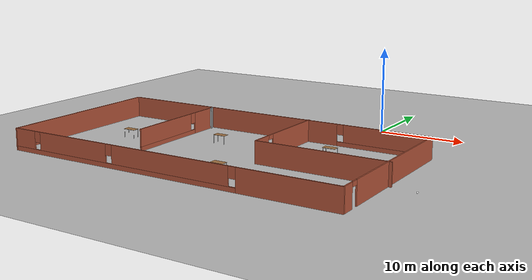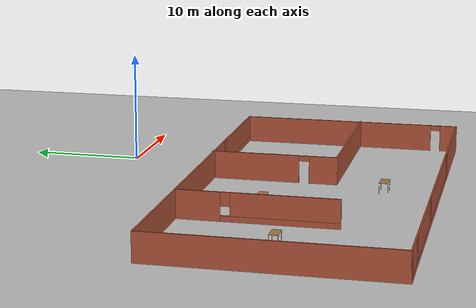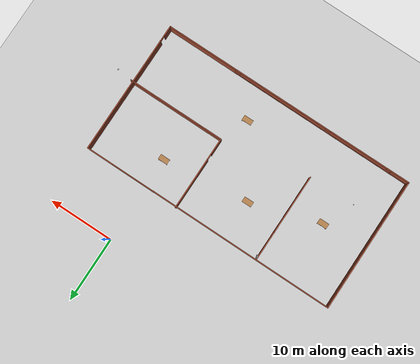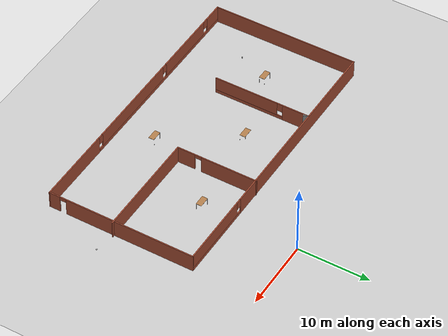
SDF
<sdf version="1.6">
 <world name="default">
  <light name="sun" type="directional">
   <pose>0 0 10 0 -0 0</pose>
   <diffuse>0.8 0.8 0.8 1</diffuse>
   <specular>0.1 0.1 0.1 1</specular>
   <attenuation>
    <range>1000</range>
    <constant>0.9</constant>
    <linear>0.01</linear>
    <quadratic>0.001</quadratic>
   </attenuation>
   <direction>-0.5 0.5 -1</direction>
  </light>
  <model name="ground_plane">
   <static>1</static>
   <link name="link">
    <collision name="collision">
     <geometry><plane><normal>0 0 1</normal><size>100 100</size></plane></geometry>
     <surface><friction><ode><mu>100</mu><mu2>50</mu2></ode></friction></surface>
    </collision>
    <visual name="visual">
     <cast_shadows>0</cast_shadows>
     <geometry><plane><normal>0 0 1</normal><size>100 100</size></plane></geometry>
     <material>
      <script><uri>file://media/materials/scripts/gazebo.material</uri><name>Gazebo/Grey</name></script>
     </material>
    </visual>
   </link>
  </model>
  <gravity>0 0 -9.8</gravity>
  <magnetic_field>6e-06 2.3e-05 -4.2e-05</magnetic_field>
  <atmosphere type="adiabatic"/>
  <physics name="default_physics" default="0" type="ode">
   <max_step_size>0.001</max_step_size>
   <real_time_factor>1</real_time_factor>
   <real_time_update_rate>1000</real_time_update_rate>
  </physics>
  <scene><ambient>0.4 0.4 0.4 1</ambient><background>0.7 0.7 0.7 1</background><shadows>1</shadows></scene>
  <spherical_coordinates>
   <surface_model>EARTH_WGS84</surface_model>
   <latitude_deg>0</latitude_deg>
   <longitude_deg>0</longitude_deg>
   <elevation>0</elevation>
   <heading_deg>0</heading_deg>
  </spherical_coordinates>
  <model name="building01">
   <pose>-10.1865 -19.2112 0 0 -0 0</pose>
   <link name="Wall_14">
    <pose>-0.161871 10.2462 0 0 -0 0</pose>
    <visual name="Wall_14_Visual_0">
     <pose>-5.58099 0 1.25 0 -0 0</pose>
     <geometry><box><size>28.838 0.15 2.5</size></box></geometry>
     <material>
      <script><uri>file://media/materials/scripts/gazebo.material</uri><name>Gazebo/Bricks</name></script>
      <ambient>1 1 1 1</ambient>
     </material>
     <meta><layer>0</layer></meta>
    </visual>
    <collision name="Wall_14_Collision_0">
     <geometry><box><size>28.838 0.15 2.5</size></box></geometry>
     <pose>-5.58099 0 1.25 0 -0 0</pose>
    </collision>
    <visual name="Wall_14_Visual_1">
     <pose>14.419 0 0.25 0 -0 0</pose>
     <geometry><box><size>11.162 0.15 0.5</size></box></geometry>
     <material>
      <script><uri>file://media/materials/scripts/gazebo.material</uri><name>Gazebo/Bricks</name></script>
      <ambient>1 1 1 1</ambient>
     </material>
     <meta><layer>0</layer></meta>
    </visual>
    <collision name="Wall_14_Collision_1">
     <geometry><box><size>11.162 0.15 0.5</size></box></geometry>
     <pose>14.419 0 0.25 0 -0 0</pose>
    </collision>
    <visual name="Wall_14_Visual_2">
     <pose>14.819 0 1.5 0 -0 0</pose>
     <geometry><box><size>10.362 0.15 2</size></box></geometry>
     <material>
      <script><uri>file://media/materials/scripts/gazebo.material</uri><name>Gazebo/Bricks</name></script>
      <ambient>1 1 1 1</ambient>
     </material>
     <meta><layer>0</layer></meta>
    </visual>
    <collision name="Wall_14_Collision_2">
     <geometry><box><size>10.362 0.15 2</size></box></geometry>
     <pose>14.819 0 1.5 0 -0 0</pose>
    </collision>
    <visual name="Wall_14_Visual_3">
     <pose>9.23803 0 1.9 0 -0 0</pose>
     <geometry><box><size>0.8 0.15 1.2</size></box></geometry>
     <material>
      <script><uri>file://media/materials/scripts/gazebo.material</uri><name>Gazebo/Bricks</name></script>
      <ambient>1 1 1 1</ambient>
     </material>
     <meta><layer>0</layer></meta>
    </visual>
    <collision name="Wall_14_Collision_3">
     <geometry><box><size>0.8 0.15 1.2</size></box></geometry>
     <pose>9.23803 0 1.9 0 -0 0</pose>
    </collision>
   </link>
   <link name="Wall_15">
    <pose>19.7631 -0.053806 0 0 0 -1.5708</pose>
    <visual name="Wall_15_Visual_0">
     <pose>-1.25401 0 1.25 0 -0 0</pose>
     <geometry><box><size>18.242 0.15 2.5</size></box></geometry>
     <material>
      <script><uri>file://media/materials/scripts/gazebo.material</uri><name>Gazebo/Bricks</name></script>
      <ambient>1 1 1 1</ambient>
     </material>
     <meta><layer>0</layer></meta>
    </visual>
    <collision name="Wall_15_Collision_0">
     <geometry><box><size>18.242 0.15 2.5</size></box></geometry>
     <pose>-1.25401 0 1.25 0 -0 0</pose>
    </collision>
    <visual name="Wall_15_Visual_1">
     <pose>9.57099 0 1.25 0 -0 0</pose>
     <geometry><box><size>1.60801 0.15 2.5</size></box></geometry>
     <material>
      <script><uri>file://media/materials/scripts/gazebo.material</uri><name>Gazebo/Bricks</name></script>
      <ambient>1 1 1 1</ambient>
     </material>
     <meta><layer>0</layer></meta>
    </visual>
    <collision name="Wall_15_Collision_1">
     <geometry><box><size>1.60801 0.15 2.5</size></box></geometry>
     <pose>9.57099 0 1.25 0 -0 0</pose>
    </collision>
    <visual name="Wall_15_Visual_2">
     <pose>8.31699 0 2.25 0 -0 0</pose>
     <geometry><box><size>0.9 0.15 0.5</size></box></geometry>
     <material>
      <script><uri>file://media/materials/scripts/gazebo.material</uri><name>Gazebo/Bricks</name></script>
      <ambient>1 1 1 1</ambient>
     </material>
     <meta><layer>0</layer></meta>
    </visual>
    <collision name="Wall_15_Collision_2">
     <geometry><box><size>0.9 0.15 0.5</size></box></geometry>
     <pose>8.31699 0 2.25 0 -0 0</pose>
    </collision>
   </link>
   <link name="Wall_16">
    <pose>-0.161871 -10.3538 0 0 -0 3.14159</pose>
    <visual name="Wall_16_Visual_0">
     <pose>-14.4424 0 1.25 0 -0 0</pose>
     <geometry><box><size>11.1153 0.15 2.5</size></box></geometry>
     <material>
      <script><uri>file://media/materials/scripts/gazebo.material</uri><name>Gazebo/Bricks</name></script>
      <ambient>1 1 1 1</ambient>
     </material>
     <meta><layer>0</layer></meta>
    </visual>
    <collision name="Wall_16_Collision_0">
     <geometry><box><size>11.1153 0.15 2.5</size></box></geometry>
     <pose>-14.4424 0 1.25 0 -0 0</pose>
    </collision>
    <visual name="Wall_16_Visual_1">
     <pose>5.55763 0 0.25 0 -0 0</pose>
     <geometry><box><size>28.8847 0.15 0.5</size></box></geometry>
     <material>
      <script><uri>file://media/materials/scripts/gazebo.material</uri><name>Gazebo/Bricks</name></script>
      <ambient>1 1 1 1</ambient>
     </material>
     <meta><layer>0</layer></meta>
    </visual>
    <collision name="Wall_16_Collision_1">
     <geometry><box><size>28.8847 0.15 0.5</size></box></geometry>
     <pose>5.55763 0 0.25 0 -0 0</pose>
    </collision>
    <visual name="Wall_16_Visual_2">
     <pose>-0.951851 0 1.5 0 -0 0</pose>
     <geometry><box><size>14.2658 0.15 2</size></box></geometry>
     <material>
      <script><uri>file://media/materials/scripts/gazebo.material</uri><name>Gazebo/Bricks</name></script>
      <ambient>1 1 1 1</ambient>
     </material>
     <meta><layer>0</layer></meta>
    </visual>
    <collision name="Wall_16_Collision_2">
     <geometry><box><size>14.2658 0.15 2</size></box></geometry>
     <pose>-0.951851 0 1.5 0 -0 0</pose>
    </collision>
    <visual name="Wall_16_Visual_3">
     <pose>11.6388 0 1.5 0 -0 0</pose>
     <geometry><box><size>9.31559 0.15 2</size></box></geometry>
     <material>
      <script><uri>file://media/materials/scripts/gazebo.material</uri><name>Gazebo/Bricks</name></script>
      <ambient>1 1 1 1</ambient>
     </material>
     <meta><layer>0</layer></meta>
    </visual>
    <collision name="Wall_16_Collision_3">
     <geometry><box><size>9.31559 0.15 2</size></box></geometry>
     <pose>11.6388 0 1.5 0 -0 0</pose>
    </collision>
    <visual name="Wall_16_Visual_4">
     <pose>18.5483 0 1.5 0 -0 0</pose>
     <geometry><box><size>2.90338 0.15 2</size></box></geometry>
     <material>
      <script><uri>file://media/materials/scripts/gazebo.material</uri><name>Gazebo/Bricks</name></script>
      <ambient>1 1 1 1</ambient>
     </material>
     <meta><layer>0</layer></meta>
    </visual>
    <collision name="Wall_16_Collision_4">
     <geometry><box><size>2.90338 0.15 2</size></box></geometry>
     <pose>18.5483 0 1.5 0 -0 0</pose>
    </collision>
    <visual name="Wall_16_Visual_5">
     <pose>-8.48474 0 1.9 0 -0 0</pose>
     <geometry><box><size>0.8 0.15 1.2</size></box></geometry>
     <material>
      <script><uri>file://media/materials/scripts/gazebo.material</uri><name>Gazebo/Bricks</name></script>
      <ambient>1 1 1 1</ambient>
     </material>
     <meta><layer>0</layer></meta>
    </visual>
    <collision name="Wall_16_Collision_5">
     <geometry><box><size>0.8 0.15 1.2</size></box></geometry>
     <pose>-8.48474 0 1.9 0 -0 0</pose>
    </collision>
    <visual name="Wall_16_Visual_6">
     <pose>6.58103 0 1.9 0 -0 0</pose>
     <geometry><box><size>0.8 0.15 1.2</size></box></geometry>
     <material>
      <script><uri>file://media/materials/scripts/gazebo.material</uri><name>Gazebo/Bricks</name></script>
      <ambient>1 1 1 1</ambient>
     </material>
     <meta><layer>0</layer></meta>
    </visual>
    <collision name="Wall_16_Collision_6">
     <geometry><box><size>0.8 0.15 1.2</size></box></geometry>
     <pose>6.58103 0 1.9 0 -0 0</pose>
    </collision>
    <visual name="Wall_16_Visual_7">
     <pose>16.6966 0 1.9 0 -0 0</pose>
     <geometry><box><size>0.8 0.15 1.2</size></box></geometry>
     <material>
      <script><uri>file://media/materials/scripts/gazebo.material</uri><name>Gazebo/Bricks</name></script>
      <ambient>1 1 1 1</ambient>
     </material>
     <meta><layer>0</layer></meta>
    </visual>
    <collision name="Wall_16_Collision_7">
     <geometry><box><size>0.8 0.15 1.2</size></box></geometry>
     <pose>16.6966 0 1.9 0 -0 0</pose>
    </collision>
   </link>
   <link name="Wall_17">
    <collision name="Wall_17_Collision">
     <geometry><box><size>20.75 0.15 2.5</size></box></geometry>
     <pose>0 0 1.25 0 -0 0</pose>
    </collision>
    <visual name="Wall_17_Visual">
     <pose>0 0 1.25 0 -0 0</pose>
     <geometry><box><size>20.75 0.15 2.5</size></box></geometry>
     <material>
      <script><uri>file://media/materials/scripts/gazebo.material</uri><name>Gazebo/Bricks</name></script>
      <ambient>1 1 1 1</ambient>
     </material>
     <meta><layer>0</layer></meta>
    </visual>
    <pose>-20.0869 -0.053806 0 0 -0 1.5708</pose>
   </link>
   <link name="Wall_19">
    <collision name="Wall_19_Collision">
     <geometry><box><size>0.75 0.15 2.5</size></box></geometry>
     <pose>0 0 1.25 0 -0 0</pose>
    </collision>
    <visual name="Wall_19_Visual">
     <pose>0 0 1.25 0 -0 0</pose>
     <geometry><box><size>0.75 0.15 2.5</size></box></geometry>
     <material>
      <script><uri>file://media/materials/scripts/gazebo.material</uri><name>Gazebo/Grey</name></script>
      <ambient>1 1 1 1</ambient>
     </material>
     <meta><layer>0</layer></meta>
    </visual>
    <pose>-8.21951 9.8903 0 0 -0 1.8326</pose>
   </link>
   <link name="Wall_20">
    <pose>-8.29716 3.38007 0 0 0 -1.5708</pose>
    <visual name="Wall_20_Visual_0">
     <pose>-4.97211 0 1.25 0 -0 0</pose>
     <geometry><box><size>3.80577 0.15 2.5</size></box></geometry>
     <material>
      <script><uri>file://media/materials/scripts/gazebo.material</uri><name>Gazebo/Bricks</name></script>
      <ambient>1 1 1 1</ambient>
     </material>
     <meta><layer>0</layer></meta>
    </visual>
    <collision name="Wall_20_Collision_0">
     <geometry><box><size>3.80577 0.15 2.5</size></box></geometry>
     <pose>-4.97211 0 1.25 0 -0 0</pose>
    </collision>
    <visual name="Wall_20_Visual_1">
     <pose>1.90289 0 0.25 0 -0 0</pose>
     <geometry><box><size>9.94423 0.15 0.5</size></box></geometry>
     <material>
      <script><uri>file://media/materials/scripts/gazebo.material</uri><name>Gazebo/Bricks</name></script>
      <ambient>1 1 1 1</ambient>
     </material>
     <meta><layer>0</layer></meta>
    </visual>
    <collision name="Wall_20_Collision_1">
     <geometry><box><size>9.94423 0.15 0.5</size></box></geometry>
     <pose>1.90289 0 0.25 0 -0 0</pose>
    </collision>
    <visual name="Wall_20_Visual_2">
     <pose>2.30289 0 1.5 0 -0 0</pose>
     <geometry><box><size>9.14423 0.15 2</size></box></geometry>
     <material>
      <script><uri>file://media/materials/scripts/gazebo.material</uri><name>Gazebo/Bricks</name></script>
      <ambient>1 1 1 1</ambient>
     </material>
     <meta><layer>0</layer></meta>
    </visual>
    <collision name="Wall_20_Collision_2">
     <geometry><box><size>9.14423 0.15 2</size></box></geometry>
     <pose>2.30289 0 1.5 0 -0 0</pose>
    </collision>
    <visual name="Wall_20_Visual_3">
     <pose>-2.66923 0 1.9 0 -0 0</pose>
     <geometry><box><size>0.8 0.15 1.2</size></box></geometry>
     <material>
      <script><uri>file://media/materials/scripts/gazebo.material</uri><name>Gazebo/Bricks</name></script>
      <ambient>1 1 1 1</ambient>
     </material>
     <meta><layer>0</layer></meta>
    </visual>
    <collision name="Wall_20_Collision_3">
     <geometry><box><size>0.8 0.15 1.2</size></box></geometry>
     <pose>-2.66923 0 1.9 0 -0 0</pose>
    </collision>
   </link>
   <link name="Wall_22">
    <pose>4.98687 4.67881 0 0 0 -1.5708</pose>
    <visual name="Wall_22_Visual_0">
     <pose>-1.74061 0 1.25 0 -0 0</pose>
     <geometry><box><size>8.01879 0.15 2.5</size></box></geometry>
     <material>
      <script><uri>file://media/materials/scripts/gazebo.material</uri><name>Gazebo/Bricks</name></script>
      <ambient>1 1 1 1</ambient>
     </material>
     <meta><layer>0</layer></meta>
    </visual>
    <collision name="Wall_22_Collision_0">
     <geometry><box><size>8.01879 0.15 2.5</size></box></geometry>
     <pose>-1.74061 0 1.25 0 -0 0</pose>
    </collision>
    <visual name="Wall_22_Visual_1">
     <pose>4.45939 0 1.25 0 -0 0</pose>
     <geometry><box><size>2.58121 0.15 2.5</size></box></geometry>
     <material>
      <script><uri>file://media/materials/scripts/gazebo.material</uri><name>Gazebo/Bricks</name></script>
      <ambient>1 1 1 1</ambient>
     </material>
     <meta><layer>0</layer></meta>
    </visual>
    <collision name="Wall_22_Collision_1">
     <geometry><box><size>2.58121 0.15 2.5</size></box></geometry>
     <pose>4.45939 0 1.25 0 -0 0</pose>
    </collision>
    <visual name="Wall_22_Visual_2">
     <pose>2.71879 0 2.25 0 -0 0</pose>
     <geometry><box><size>0.9 0.15 0.5</size></box></geometry>
     <material>
      <script><uri>file://media/materials/scripts/gazebo.material</uri><name>Gazebo/Bricks</name></script>
      <ambient>1 1 1 1</ambient>
     </material>
     <meta><layer>0</layer></meta>
    </visual>
    <collision name="Wall_22_Collision_2">
     <geometry><box><size>0.9 0.15 0.5</size></box></geometry>
     <pose>2.71879 0 2.25 0 -0 0</pose>
    </collision>
   </link>
   <link name="Wall_23">
    <collision name="Wall_23_Collision">
     <geometry><box><size>15.25 0.15 2.5</size></box></geometry>
     <pose>0 0 1.25 0 -0 0</pose>
    </collision>
    <visual name="Wall_23_Visual">
     <pose>0 0 1.25 0 -0 0</pose>
     <geometry><box><size>15.25 0.15 2.5</size></box></geometry>
     <material>
      <script><uri>file://media/materials/scripts/gazebo.material</uri><name>Gazebo/Bricks</name></script>
      <ambient>0.921569 0.807843 0.615686 1</ambient>
     </material>
     <meta><layer>0</layer></meta>
    </visual>
    <pose>12.5369 -0.996193 0 0 -0 0</pose>
   </link>
   <static>1</static>
  </model>
  <model name="table">
   <static>1</static>
   <link name="link">
    <collision name="surface">
     <pose>0 0 1 0 -0 0</pose>
     <geometry><box><size>1.5 0.8 0.03</size></box></geometry>
     <surface><friction><ode><mu>0.6</mu><mu2>0.6</mu2></ode></friction></surface>
    </collision>
    <visual name="visual1">
     <pose>0 0 1 0 -0 0</pose>
     <geometry><box><size>1.5 0.8 0.03</size></box></geometry>
     <material>
      <script><uri>file://media/materials/scripts/gazebo.material</uri><name>Gazebo/Wood</name></script>
     </material>
    </visual>
    <collision name="front_left_leg">
     <pose>0.68 0.38 0.5 0 -0 0</pose>
     <geometry><cylinder><radius>0.02</radius><length>1</length></cylinder></geometry>
    </collision>
    <visual name="front_left_leg">
     <pose>0.68 0.38 0.5 0 -0 0</pose>
     <geometry><cylinder><radius>0.02</radius><length>1</length></cylinder></geometry>
     <material>
      <script><uri>file://media/materials/scripts/gazebo.material</uri><name>Gazebo/Grey</name></script>
     </material>
    </visual>
    <collision name="front_right_leg">
     <pose>0.68 -0.38 0.5 0 -0 0</pose>
     <geometry><cylinder><radius>0.02</radius><length>1</length></cylinder></geometry>
    </collision>
    <visual name="front_right_leg">
     <pose>0.68 -0.38 0.5 0 -0 0</pose>
     <geometry><cylinder><radius>0.02</radius><length>1</length></cylinder></geometry>
     <material>
      <script><uri>file://media/materials/scripts/gazebo.material</uri><name>Gazebo/Grey</name></script>
     </material>
    </visual>
    <collision name="back_right_leg">
     <pose>-0.68 -0.38 0.5 0 -0 0</pose>
     <geometry><cylinder><radius>0.02</radius><length>1</length></cylinder></geometry>
    </collision>
    <visual name="back_right_leg">
     <pose>-0.68 -0.38 0.5 0 -0 0</pose>
     <geometry><cylinder><radius>0.02</radius><length>1</length></cylinder></geometry>
     <material>
      <script><uri>file://media/materials/scripts/gazebo.material</uri><name>Gazebo/Grey</name></script>
     </material>
    </visual>
    <collision name="back_left_leg">
     <pose>-0.68 0.38 0.5 0 -0 0</pose>
     <geometry><cylinder><radius>0.02</radius><length>1</length></cylinder></geometry>
    </collision>
    <visual name="back_left_leg">
     <pose>-0.68 0.38 0.5 0 -0 0</pose>
     <geometry><cylinder><radius>0.02</radius><length>1</length></cylinder></geometry>
     <material>
      <script><uri>file://media/materials/scripts/gazebo.material</uri><name>Gazebo/Grey</name></script>
     </material>
    </visual>
   </link>
   <pose>-23.5608 -18.3554 0 0 -0 0</pose>
  </model>
  <model name="table_0">
   <static>1</static>
   <link name="link">
    <collision name="surface">
     <pose>0 0 1 0 -0 0</pose>
     <geometry><box><size>1.5 0.8 0.03</size></box></geometry>
     <surface><friction><ode><mu>0.6</mu><mu2>0.6</mu2></ode></friction></surface>
    </collision>
    <visual name="visual1">
     <pose>0 0 1 0 -0 0</pose>
     <geometry><box><size>1.5 0.8 0.03</size></box></geometry>
     <material>
      <script><uri>file://media/materials/scripts/gazebo.material</uri><name>Gazebo/Wood</name></script>
     </material>
    </visual>
    <collision name="front_left_leg">
     <pose>0.68 0.38 0.5 0 -0 0</pose>
     <geometry><cylinder><radius>0.02</radius><length>1</length></cylinder></geometry>
    </collision>
    <visual name="front_left_leg">
     <pose>0.68 0.38 0.5 0 -0 0</pose>
     <geometry><cylinder><radius>0.02</radius><length>1</length></cylinder></geometry>
     <material>
      <script><uri>file://media/materials/scripts/gazebo.material</uri><name>Gazebo/Grey</name></script>
     </material>
    </visual>
    <collision name="front_right_leg">
     <pose>0.68 -0.38 0.5 0 -0 0</pose>
     <geometry><cylinder><radius>0.02</radius><length>1</length></cylinder></geometry>
    </collision>
    <visual name="front_right_leg">
     <pose>0.68 -0.38 0.5 0 -0 0</pose>
     <geometry><cylinder><radius>0.02</radius><length>1</length></cylinder></geometry>
     <material>
      <script><uri>file://media/materials/scripts/gazebo.material</uri><name>Gazebo/Grey</name></script>
     </material>
    </visual>
    <collision name="back_right_leg">
     <pose>-0.68 -0.38 0.5 0 -0 0</pose>
     <geometry><cylinder><radius>0.02</radius><length>1</length></cylinder></geometry>
    </collision>
    <visual name="back_right_leg">
     <pose>-0.68 -0.38 0.5 0 -0 0</pose>
     <geometry><cylinder><radius>0.02</radius><length>1</length></cylinder></geometry>
     <material>
      <script><uri>file://media/materials/scripts/gazebo.material</uri><name>Gazebo/Grey</name></script>
     </material>
    </visual>
    <collision name="back_left_leg">
     <pose>-0.68 0.38 0.5 0 -0 0</pose>
     <geometry><cylinder><radius>0.02</radius><length>1</length></cylinder></geometry>
    </collision>
    <visual name="back_left_leg">
     <pose>-0.68 0.38 0.5 0 -0 0</pose>
     <geometry><cylinder><radius>0.02</radius><length>1</length></cylinder></geometry>
     <material>
      <script><uri>file://media/materials/scripts/gazebo.material</uri><name>Gazebo/Grey</name></script>
     </material>
    </visual>
   </link>
   <pose>-13.1179 -15.0829 0 0 -0 0</pose>
  </model>
  <model name="table_1">
   <static>1</static>
   <link name="link">
    <collision name="surface">
     <pose>0 0 1 0 -0 0</pose>
     <geometry><box><size>1.5 0.8 0.03</size></box></geometry>
     <surface><friction><ode><mu>0.6</mu><mu2>0.6</mu2></ode></friction></surface>
    </collision>
    <visual name="visual1">
     <pose>0 0 1 0 -0 0</pose>
     <geometry><box><size>1.5 0.8 0.03</size></box></geometry>
     <material>
      <script><uri>file://media/materials/scripts/gazebo.material</uri><name>Gazebo/Wood</name></script>
     </material>
    </visual>
    <collision name="front_left_leg">
     <pose>0.68 0.38 0.5 0 -0 0</pose>
     <geometry><cylinder><radius>0.02</radius><length>1</length></cylinder></geometry>
    </collision>
    <visual name="front_left_leg">
     <pose>0.68 0.38 0.5 0 -0 0</pose>
     <geometry><cylinder><radius>0.02</radius><length>1</length></cylinder></geometry>
     <material>
      <script><uri>file://media/materials/scripts/gazebo.material</uri><name>Gazebo/Grey</name></script>
     </material>
    </visual>
    <collision name="front_right_leg">
     <pose>0.68 -0.38 0.5 0 -0 0</pose>
     <geometry><cylinder><radius>0.02</radius><length>1</length></cylinder></geometry>
    </collision>
    <visual name="front_right_leg">
     <pose>0.68 -0.38 0.5 0 -0 0</pose>
     <geometry><cylinder><radius>0.02</radius><length>1</length></cylinder></geometry>
     <material>
      <script><uri>file://media/materials/scripts/gazebo.material</uri><name>Gazebo/Grey</name></script>
     </material>
    </visual>
    <collision name="back_right_leg">
     <pose>-0.68 -0.38 0.5 0 -0 0</pose>
     <geometry><cylinder><radius>0.02</radius><length>1</length></cylinder></geometry>
    </collision>
    <visual name="back_right_leg">
     <pose>-0.68 -0.38 0.5 0 -0 0</pose>
     <geometry><cylinder><radius>0.02</radius><length>1</length></cylinder></geometry>
     <material>
      <script><uri>file://media/materials/scripts/gazebo.material</uri><name>Gazebo/Grey</name></script>
     </material>
    </visual>
    <collision name="back_left_leg">
     <pose>-0.68 0.38 0.5 0 -0 0</pose>
     <geometry><cylinder><radius>0.02</radius><length>1</length></cylinder></geometry>
    </collision>
    <visual name="back_left_leg">
     <pose>-0.68 0.38 0.5 0 -0 0</pose>
     <geometry><cylinder><radius>0.02</radius><length>1</length></cylinder></geometry>
     <material>
      <script><uri>file://media/materials/scripts/gazebo.material</uri><name>Gazebo/Grey</name></script>
     </material>
    </visual>
   </link>
   <pose>-6.74856 -24.6846 0 0 -0 0</pose>
  </model>
  <model name="table_2">
   <static>1</static>
   <link name="link">
    <collision name="surface">
     <pose>0 0 1 0 -0 0</pose>
     <geometry><box><size>1.5 0.8 0.03</size></box></geometry>
     <surface><friction><ode><mu>0.6</mu><mu2>0.6</mu2></ode></friction></surface>
    </collision>
    <visual name="visual1">
     <pose>0 0 1 0 -0 0</pose>
     <geometry><box><size>1.5 0.8 0.03</size></box></geometry>
     <material>
      <script><uri>file://media/materials/scripts/gazebo.material</uri><name>Gazebo/Wood</name></script>
     </material>
    </visual>
    <collision name="front_left_leg">
     <pose>0.68 0.38 0.5 0 -0 0</pose>
     <geometry><cylinder><radius>0.02</radius><length>1</length></cylinder></geometry>
    </collision>
    <visual name="front_left_leg">
     <pose>0.68 0.38 0.5 0 -0 0</pose>
     <geometry><cylinder><radius>0.02</radius><length>1</length></cylinder></geometry>
     <material>
      <script><uri>file://media/materials/scripts/gazebo.material</uri><name>Gazebo/Grey</name></script>
     </material>
    </visual>
    <collision name="front_right_leg">
     <pose>0.68 -0.38 0.5 0 -0 0</pose>
     <geometry><cylinder><radius>0.02</radius><length>1</length></cylinder></geometry>
    </collision>
    <visual name="front_right_leg">
     <pose>0.68 -0.38 0.5 0 -0 0</pose>
     <geometry><cylinder><radius>0.02</radius><length>1</length></cylinder></geometry>
     <material>
      <script><uri>file://media/materials/scripts/gazebo.material</uri><name>Gazebo/Grey</name></script>
     </material>
    </visual>
    <collision name="back_right_leg">
     <pose>-0.68 -0.38 0.5 0 -0 0</pose>
     <geometry><cylinder><radius>0.02</radius><length>1</length></cylinder></geometry>
    </collision>
    <visual name="back_right_leg">
     <pose>-0.68 -0.38 0.5 0 -0 0</pose>
     <geometry><cylinder><radius>0.02</radius><length>1</length></cylinder></geometry>
     <material>
      <script><uri>file://media/materials/scripts/gazebo.material</uri><name>Gazebo/Grey</name></script>
     </material>
    </visual>
    <collision name="back_left_leg">
     <pose>-0.68 0.38 0.5 0 -0 0</pose>
     <geometry><cylinder><radius>0.02</radius><length>1</length></cylinder></geometry>
    </collision>
    <visual name="back_left_leg">
     <pose>-0.68 0.38 0.5 0 -0 0</pose>
     <geometry><cylinder><radius>0.02</radius><length>1</length></cylinder></geometry>
     <material>
      <script><uri>file://media/materials/scripts/gazebo.material</uri><name>Gazebo/Grey</name></script>
     </material>
    </visual>
   </link>
   <pose>-0.00038 -13.5419 0 0 -0 0</pose>
  </model>
  <model name="beer">
   <link name="link">
    <pose>0 0 0.115 0 -0 0</pose>
    <inertial>
     <mass>0.39</mass>
     <inertia><ixx>0.00058</ixx><ixy>0</ixy><ixz>0</ixz><iyy>0.00058</iyy><iyz>0</iyz><izz>0.00019</izz></inertia>
    </inertial>
    <collision name="collision">
     <geometry><cylinder><radius>0.055</radius><length>0.23</length></cylinder></geometry>
    </collision>
    <visual name="visual">
     <geometry><cylinder><radius>0.055</radius><length>0.23</length></cylinder></geometry>
     <material>
      <script>
       <uri>model://beer/materials/scripts</uri>
       <uri>model://beer/materials/textures</uri>
       <name>Beer/Diffuse</name>
      </script>
     </material>
    </visual>
   </link>
   <pose>-25.7314 -23.036 -7e-06 -1e-06 -0 -2e-06</pose>
  </model>
  <model name="my_ball">
   <link name="link_0">
    <pose>0.283081 -0.201251 0 0 -0 0</pose>
    <inertial>
     <mass>1</mass>
     <inertia><ixx>0.1</ixx><ixy>0</ixy><ixz>0</ixz><iyy>0.1</iyy><iyz>0</iyz><izz>0.1</izz></inertia>
    </inertial>
    <visual name="visual">
     <geometry><sphere><radius>0.1</radius></sphere></geometry>
     <material>
      <lighting>1</lighting>
      <script><uri>file://media/materials/scripts/gazebo.material</uri><name>Gazebo/White</name></script>
      <shader type="pixel"><normal_map>__default__</normal_map></shader>
      <ambient>1 1 1 1</ambient>
      <diffuse>1 1 1 1</diffuse>
      <specular>1 1 1 1</specular>
      <emissive>1 1 1 1</emissive>
     </material>
    </visual>
    <collision name="collision">
     <geometry><sphere><radius>0.1</radius></sphere></geometry>
     <surface>
      <friction>
       <ode><mu>1</mu><mu2>1</mu2><fdir1>0 0 0</fdir1><slip1>0</slip1><slip2>0</slip2></ode>
       <torsional>
        <coefficient>1</coefficient>
        <patch_radius>0</patch_radius>
        <surface_radius>0</surface_radius>
        <use_patch_radius>1</use_patch_radius>
        <ode><slip>0</slip></ode>
       </torsional>
      </friction>
      <bounce><restitution_coefficient>0</restitution_coefficient><threshold>1e+06</threshold></bounce>
      <contact>
       <collide_without_contact>0</collide_without_contact>
       <collide_without_contact_bitmask>1</collide_without_contact_bitmask>
       <collide_bitmask>1</collide_bitmask>
       <ode>
        <soft_cfm>0</soft_cfm>
        <soft_erp>0.2</soft_erp>
        <kp>1e+13</kp>
        <kd>1</kd>
        <max_vel>0.01</max_vel>
        <min_depth>0</min_depth>
       </ode>
       <bullet>
        <split_impulse>1</split_impulse>
        <split_impulse_penetration_threshold>-0.01</split_impulse_penetration_threshold>
        <soft_cfm>0</soft_cfm>
        <soft_erp>0.2</soft_erp>
        <kp>1e+13</kp>
        <kd>1</kd>
       </bullet>
      </contact>
     </surface>
    </collision>
   </link>
   <static>0</static>
   <pose>12.461 -20.5037 0.1 0 -0 0</pose>
  </model>
 </world>
</sdf>
